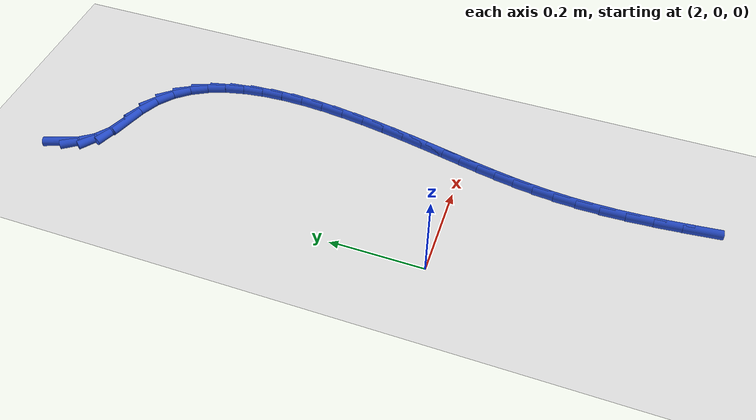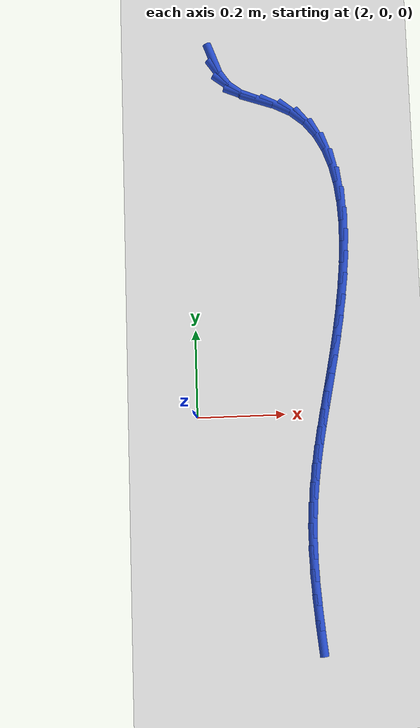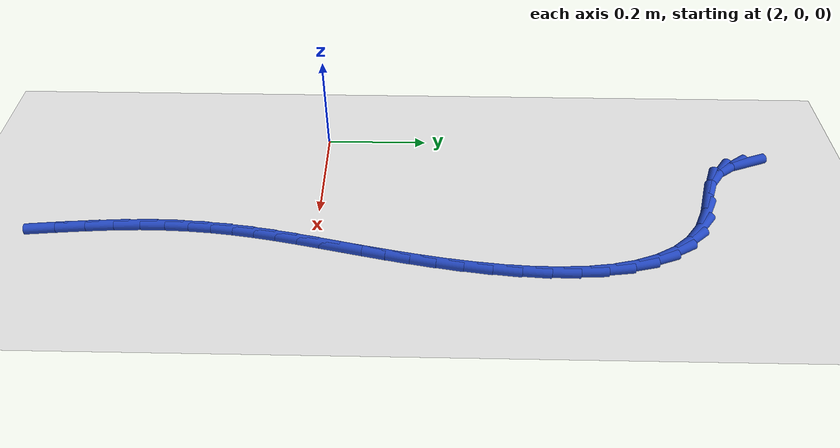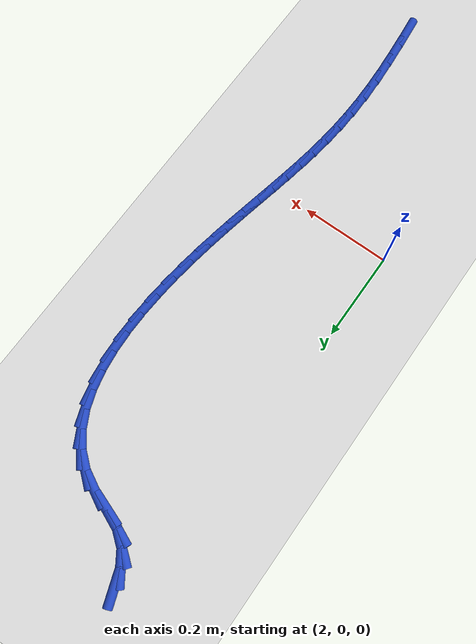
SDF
<sdf version="1.6">
 <world name="default">
  <model name="ground_plane">
   <static>1</static>
   <link name="link">
    <collision name="collision">
     <geometry><plane><normal>0 0 1</normal><size>100 100</size></plane></geometry>
     <surface><friction><ode><mu>100</mu><mu2>50</mu2></ode></friction></surface>
    </collision>
    <visual name="visual">
     <cast_shadows>0</cast_shadows>
     <geometry><plane><normal>0 0 1</normal><size>100 100</size></plane></geometry>
     <material>
      <script><uri>file://media/materials/scripts/gazebo.material</uri><name>Gazebo/WhiteGlow</name></script>
     </material>
    </visual>
   </link>
  </model>
  <model name="line">
   <link name="link_86">
    <pose>2.0585078807323525 0.8496318388529785 0.01 0 1.57 -1.2249898475581995</pose>
    <collision name="collision">
     <geometry><cylinder><radius>0.01</radius><length>0.08</length></cylinder></geometry>
    </collision>
    <visual name="visual">
     <material>
      <script><name>Gazebo/Blue</name><uri>file://media/materials/scripts/gazebo.material</uri></script>
     </material>
     <geometry><cylinder><radius>0.01</radius><length>0.08</length></cylinder></geometry>
    </visual>
   </link>
   <link name="link_87">
    <pose>2.0710477937780403 0.8148261508081717 0.01 0 1.57 -0.9673591083011305</pose>
    <collision name="collision">
     <geometry><cylinder><radius>0.01</radius><length>0.08</length></cylinder></geometry>
    </collision>
    <visual name="visual">
     <material>
      <script><name>Gazebo/Blue</name><uri>file://media/materials/scripts/gazebo.material</uri></script>
     </material>
     <geometry><cylinder><radius>0.01</radius><length>0.08</length></cylinder></geometry>
    </visual>
   </link>
   <link name="link_88">
    <pose>2.09106821237962 0.7857771485557453 0.01 0 1.57 -0.6545795780663911</pose>
    <collision name="collision">
     <geometry><cylinder><radius>0.01</radius><length>0.08</length></cylinder></geometry>
    </collision>
    <visual name="visual">
     <material>
      <script><name>Gazebo/Blue</name><uri>file://media/materials/scripts/gazebo.material</uri></script>
     </material>
     <geometry><cylinder><radius>0.01</radius><length>0.08</length></cylinder></geometry>
    </visual>
   </link>
   <link name="link_89">
    <pose>2.1202967747347072 0.7633455170811826 0.01 0 1.57 -0.3870024964024734</pose>
    <collision name="collision">
     <geometry><cylinder><radius>0.01</radius><length>0.08</length></cylinder></geometry>
    </collision>
    <visual name="visual">
     <material>
      <script><name>Gazebo/Blue</name><uri>file://media/materials/scripts/gazebo.material</uri></script>
     </material>
     <geometry><cylinder><radius>0.01</radius><length>0.08</length></cylinder></geometry>
    </visual>
   </link>
   <link name="link_90">
    <pose>2.1592436663225203 0.7474725074676193 0.01 0 1.57 -0.3262584201818298</pose>
    <collision name="collision">
     <geometry><cylinder><radius>0.01</radius><length>0.08</length></cylinder></geometry>
    </collision>
    <visual name="visual">
     <material>
      <script><name>Gazebo/Blue</name><uri>file://media/materials/scripts/gazebo.material</uri></script>
     </material>
     <geometry><cylinder><radius>0.01</radius><length>0.08</length></cylinder></geometry>
    </visual>
   </link>
   <link name="link_91">
    <pose>2.201775322750322 0.7330819366270795 0.01 0 1.57 -0.46458634883396543</pose>
    <collision name="collision">
     <geometry><cylinder><radius>0.01</radius><length>0.08</length></cylinder></geometry>
    </collision>
    <visual name="visual">
     <material>
      <script><name>Gazebo/Blue</name><uri>file://media/materials/scripts/gazebo.material</uri></script>
     </material>
     <geometry><cylinder><radius>0.01</radius><length>0.08</length></cylinder></geometry>
    </visual>
   </link>
   <link name="link_92">
    <pose>2.240081813916022 0.7138837201366212 0.01 0 1.57 -0.6830885526209128</pose>
    <collision name="collision">
     <geometry><cylinder><radius>0.01</radius><length>0.08</length></cylinder></geometry>
    </collision>
    <visual name="visual">
     <material>
      <script><name>Gazebo/Blue</name><uri>file://media/materials/scripts/gazebo.material</uri></script>
     </material>
     <geometry><cylinder><radius>0.01</radius><length>0.08</length></cylinder></geometry>
    </visual>
   </link>
   <link name="link_93">
    <pose>2.271727751603935 0.6881308116999021 0.01 0 1.57 -0.8922184669051937</pose>
    <collision name="collision">
     <geometry><cylinder><radius>0.01</radius><length>0.08</length></cylinder></geometry>
    </collision>
    <visual name="visual">
     <material>
      <script><name>Gazebo/Blue</name><uri>file://media/materials/scripts/gazebo.material</uri></script>
     </material>
     <geometry><cylinder><radius>0.01</radius><length>0.08</length></cylinder></geometry>
    </visual>
   </link>
   <link name="link_94">
    <pose>2.297196898308863 0.6565435994764391 0.01 0 1.57 -1.0756680846532445</pose>
    <collision name="collision">
     <geometry><cylinder><radius>0.01</radius><length>0.08</length></cylinder></geometry>
    </collision>
    <visual name="visual">
     <material>
      <script><name>Gazebo/Blue</name><uri>file://media/materials/scripts/gazebo.material</uri></script>
     </material>
     <geometry><cylinder><radius>0.01</radius><length>0.08</length></cylinder></geometry>
    </visual>
   </link>
   <link name="link_95">
    <pose>2.3170020276628724 0.6198669935113165 0.01 0 1.57 -1.2276967945687367</pose>
    <collision name="collision">
     <geometry><cylinder><radius>0.01</radius><length>0.08</length></cylinder></geometry>
    </collision>
    <visual name="visual">
     <material>
      <script><name>Gazebo/Blue</name><uri>file://media/materials/scripts/gazebo.material</uri></script>
     </material>
     <geometry><cylinder><radius>0.01</radius><length>0.08</length></cylinder></geometry>
    </visual>
   </link>
   <link name="link_96">
    <pose>2.3316559132980266 0.5788459038496178 0.01 0 1.57 -1.3499988795147575</pose>
    <collision name="collision">
     <geometry><cylinder><radius>0.01</radius><length>0.08</length></cylinder></geometry>
    </collision>
    <visual name="visual">
     <material>
      <script><name>Gazebo/Blue</name><uri>file://media/materials/scripts/gazebo.material</uri></script>
     </material>
     <geometry><cylinder><radius>0.01</radius><length>0.08</length></cylinder></geometry>
    </visual>
   </link>
   <link name="link_97">
    <pose>2.3416713288463886 0.5342252405364257 0.01 0 1.57 -1.4473684288900597</pose>
    <collision name="collision">
     <geometry><cylinder><radius>0.01</radius><length>0.08</length></cylinder></geometry>
    </collision>
    <visual name="visual">
     <material>
      <script><name>Gazebo/Blue</name><uri>file://media/materials/scripts/gazebo.material</uri></script>
     </material>
     <geometry><cylinder><radius>0.01</radius><length>0.08</length></cylinder></geometry>
    </visual>
   </link>
   <link name="link_98">
    <pose>2.3475610479400224 0.48674991361682446 0.01 0 1.57 -1.5249115936790276</pose>
    <collision name="collision">
     <geometry><cylinder><radius>0.01</radius><length>0.08</length></cylinder></geometry>
    </collision>
    <visual name="visual">
     <material>
      <script><name>Gazebo/Blue</name><uri>file://media/materials/scripts/gazebo.material</uri></script>
     </material>
     <geometry><cylinder><radius>0.01</radius><length>0.08</length></cylinder></geometry>
    </visual>
   </link>
   <link name="link_99">
    <pose>2.3498378442109913 0.4371648331358975 0.01 0 1.57 1.5546376911339679</pose>
    <collision name="collision">
     <geometry><cylinder><radius>0.01</radius><length>0.08</length></cylinder></geometry>
    </collision>
    <visual name="visual">
     <material>
      <script><name>Gazebo/Blue</name><uri>file://media/materials/scripts/gazebo.material</uri></script>
     </material>
     <geometry><cylinder><radius>0.01</radius><length>0.08</length></cylinder></geometry>
    </visual>
   </link>
   <link name="link_100">
    <pose>2.349014491291359 0.3862149091387283 0.01 0 1.57 1.5047544848372976</pose>
    <collision name="collision">
     <geometry><cylinder><radius>0.01</radius><length>0.08</length></cylinder></geometry>
    </collision>
    <visual name="visual">
     <material>
      <script><name>Gazebo/Blue</name><uri>file://media/materials/scripts/gazebo.material</uri></script>
     </material>
     <geometry><cylinder><radius>0.01</radius><length>0.08</length></cylinder></geometry>
    </visual>
   </link>
   <link name="link_101">
    <pose>2.3456037628131905 0.33464505167040065 0.01 0 1.57 1.4645722780135277</pose>
    <collision name="collision">
     <geometry><cylinder><radius>0.01</radius><length>0.08</length></cylinder></geometry>
    </collision>
    <visual name="visual">
     <material>
      <script><name>Gazebo/Blue</name><uri>file://media/materials/scripts/gazebo.material</uri></script>
     </material>
     <geometry><cylinder><radius>0.01</radius><length>0.08</length></cylinder></geometry>
    </visual>
   </link>
   <link name="link_102">
    <pose>2.3401184324085484 0.283200170775998 0.01 0 1.57 1.4323470001797607</pose>
    <collision name="collision">
     <geometry><cylinder><radius>0.01</radius><length>0.08</length></cylinder></geometry>
    </collision>
    <visual name="visual">
     <material>
      <script><name>Gazebo/Blue</name><uri>file://media/materials/scripts/gazebo.material</uri></script>
     </material>
     <geometry><cylinder><radius>0.01</radius><length>0.08</length></cylinder></geometry>
    </visual>
   </link>
   <link name="link_103">
    <pose>2.3330712737094954 0.23262517650060388 0.01 0 1.57 1.406916186241533</pose>
    <collision name="collision">
     <geometry><cylinder><radius>0.01</radius><length>0.08</length></cylinder></geometry>
    </collision>
    <visual name="visual">
     <material>
      <script><name>Gazebo/Blue</name><uri>file://media/materials/scripts/gazebo.material</uri></script>
     </material>
     <geometry><cylinder><radius>0.01</radius><length>0.08</length></cylinder></geometry>
    </visual>
   </link>
   <link name="link_104">
    <pose>2.3249750603480965 0.18366497888930194 0.01 0 1.57 1.3875560495807224</pose>
    <collision name="collision">
     <geometry><cylinder><radius>0.01</radius><length>0.08</length></cylinder></geometry>
    </collision>
    <visual name="visual">
     <material>
      <script><name>Gazebo/Blue</name><uri>file://media/materials/scripts/gazebo.material</uri></script>
     </material>
     <geometry><cylinder><radius>0.01</radius><length>0.08</length></cylinder></geometry>
    </visual>
   </link>
   <link name="link_105">
    <pose>2.316328544336196 0.13700752926711304 0.01 0 1.57 1.3734585838072135</pose>
    <collision name="collision">
     <geometry><cylinder><radius>0.01</radius><length>0.08</length></cylinder></geometry>
    </collision>
    <visual name="visual">
     <material>
      <script><name>Gazebo/Blue</name><uri>file://media/materials/scripts/gazebo.material</uri></script>
     </material>
     <geometry><cylinder><radius>0.01</radius><length>0.08</length></cylinder></geometry>
    </visual>
   </link>
   <link name="link_106">
    <pose>2.307456583787551 0.09263438599540294 0.01 0 1.57 1.3649897628562466</pose>
    <collision name="collision">
     <geometry><cylinder><radius>0.01</radius><length>0.08</length></cylinder></geometry>
    </collision>
    <visual name="visual">
     <material>
      <script><name>Gazebo/Blue</name><uri>file://media/materials/scripts/gazebo.material</uri></script>
     </material>
     <geometry><cylinder><radius>0.01</radius><length>0.08</length></cylinder></geometry>
    </visual>
   </link>
   <link name="link_107">
    <pose>2.2985664485890385 0.050049439748573704 0.01 0 1.57 1.3631116732076547</pose>
    <collision name="collision">
     <geometry><cylinder><radius>0.01</radius><length>0.08</length></cylinder></geometry>
    </collision>
    <visual name="visual">
     <material>
      <script><name>Gazebo/Blue</name><uri>file://media/materials/scripts/gazebo.material</uri></script>
     </material>
     <geometry><cylinder><radius>0.01</radius><length>0.08</length></cylinder></geometry>
    </visual>
   </link>
   <link name="link_108">
    <pose>2.2898631913520653 0.00874757416968108 0.01 0 1.57 1.3685047364045335</pose>
    <collision name="collision">
     <geometry><cylinder><radius>0.01</radius><length>0.08</length></cylinder></geometry>
    </collision>
    <visual name="visual">
     <material>
      <script><name>Gazebo/Blue</name><uri>file://media/materials/scripts/gazebo.material</uri></script>
     </material>
     <geometry><cylinder><radius>0.01</radius><length>0.08</length></cylinder></geometry>
    </visual>
   </link>
   <link name="link_109">
    <pose>2.281551864688037 -0.03177632709821929 0.01 0 1.57 1.3814368625527615</pose>
    <collision name="collision">
     <geometry><cylinder><radius>0.01</radius><length>0.08</length></cylinder></geometry>
    </collision>
    <visual name="visual">
     <material>
      <script><name>Gazebo/Blue</name><uri>file://media/materials/scripts/gazebo.material</uri></script>
     </material>
     <geometry><cylinder><radius>0.01</radius><length>0.08</length></cylinder></geometry>
    </visual>
   </link>
   <link name="link_110">
    <pose>2.2738375212083612 -0.07202738041207159 0.01 0 1.57 1.401682594650171</pose>
    <collision name="collision">
     <geometry><cylinder><radius>0.01</radius><length>0.08</length></cylinder></geometry>
    </collision>
    <visual name="visual">
     <material>
      <script><name>Gazebo/Blue</name><uri>file://media/materials/scripts/gazebo.material</uri></script>
     </material>
     <geometry><cylinder><radius>0.01</radius><length>0.08</length></cylinder></geometry>
    </visual>
   </link>
   <link name="link_111">
    <pose>2.2669252135244435 -0.11251070212882018 0.01 0 1.57 1.4285059001752896</pose>
    <collision name="collision">
     <geometry><cylinder><radius>0.01</radius><length>0.08</length></cylinder></geometry>
    </collision>
    <visual name="visual">
     <material>
      <script><name>Gazebo/Blue</name><uri>file://media/materials/scripts/gazebo.material</uri></script>
     </material>
     <geometry><cylinder><radius>0.01</radius><length>0.08</length></cylinder></geometry>
    </visual>
   </link>
   <link name="link_112">
    <pose>2.2610199942476914 -0.15373140860540932 0.01 0 1.57 1.4607220092799844</pose>
    <collision name="collision">
     <geometry><cylinder><radius>0.01</radius><length>0.08</length></cylinder></geometry>
    </collision>
    <visual name="visual">
     <material>
      <script><name>Gazebo/Blue</name><uri>file://media/materials/scripts/gazebo.material</uri></script>
     </material>
     <geometry><cylinder><radius>0.01</radius><length>0.08</length></cylinder></geometry>
    </visual>
   </link>
   <link name="link_113">
    <pose>2.256326915989509 -0.19619461619878328 0.01 0 1.57 1.4968345980622761</pose>
    <collision name="collision">
     <geometry><cylinder><radius>0.01</radius><length>0.08</length></cylinder></geometry>
    </collision>
    <visual name="visual">
     <material>
      <script><name>Gazebo/Blue</name><uri>file://media/materials/scripts/gazebo.material</uri></script>
     </material>
     <geometry><cylinder><radius>0.01</radius><length>0.08</length></cylinder></geometry>
    </visual>
   </link>
   <link name="link_114">
    <pose>2.2530510313613057 -0.2404054412658863 0.01 0 1.57 1.5352213350539328</pose>
    <collision name="collision">
     <geometry><cylinder><radius>0.01</radius><length>0.08</length></cylinder></geometry>
    </collision>
    <visual name="visual">
     <material>
      <script><name>Gazebo/Blue</name><uri>file://media/materials/scripts/gazebo.material</uri></script>
     </material>
     <geometry><cylinder><radius>0.01</radius><length>0.08</length></cylinder></geometry>
    </visual>
   </link>
   <link name="link_115">
    <pose>2.2513973929744857 -0.2868690001636627 0.01 0 1.57 -1.5672681924192742</pose>
    <collision name="collision">
     <geometry><cylinder><radius>0.01</radius><length>0.08</length></cylinder></geometry>
    </collision>
    <visual name="visual">
     <material>
      <script><name>Gazebo/Blue</name><uri>file://media/materials/scripts/gazebo.material</uri></script>
     </material>
     <geometry><cylinder><radius>0.01</radius><length>0.08</length></cylinder></geometry>
    </visual>
   </link>
   <link name="link_116">
    <pose>2.2515710534404567 -0.33609040924905564 0.01 0 1.57 -1.5297764076033626</pose>
    <collision name="collision">
     <geometry><cylinder><radius>0.01</radius><length>0.08</length></cylinder></geometry>
    </collision>
    <visual name="visual">
     <material>
      <script><name>Gazebo/Blue</name><uri>file://media/materials/scripts/gazebo.material</uri></script>
     </material>
     <geometry><cylinder><radius>0.01</radius><length>0.08</length></cylinder></geometry>
    </visual>
   </link>
   <link name="link_117">
    <pose>2.2537205909326787 -0.3884632995709991 0.01 0 1.57 -1.5012648693094521</pose>
    <collision name="collision">
     <geometry><cylinder><radius>0.01</radius><length>0.08</length></cylinder></geometry>
    </collision>
    <visual name="visual">
     <material>
      <script><name>Gazebo/Blue</name><uri>file://media/materials/scripts/gazebo.material</uri></script>
     </material>
     <geometry><cylinder><radius>0.01</radius><length>0.08</length></cylinder></geometry>
    </visual>
   </link>
   <link name="link_118">
    <pose>2.2575544133049283 -0.443512368808696 0.01 0 1.57 -1.482711085760736</pose>
    <collision name="collision">
     <geometry><cylinder><radius>0.01</radius><length>0.08</length></cylinder></geometry>
    </collision>
    <visual name="visual">
     <material>
      <script><name>Gazebo/Blue</name><uri>file://media/materials/scripts/gazebo.material</uri></script>
     </material>
     <geometry><cylinder><radius>0.01</radius><length>0.08</length></cylinder></geometry>
    </visual>
   </link>
   <link name="link_119">
    <pose>2.262574358626632 -0.5003545284486608 0.01 0 1.57 -1.472298197107817</pose>
    <collision name="collision">
     <geometry><cylinder><radius>0.01</radius><length>0.08</length></cylinder></geometry>
    </collision>
    <visual name="visual">
     <material>
      <script><name>Gazebo/Blue</name><uri>file://media/materials/scripts/gazebo.material</uri></script>
     </material>
     <geometry><cylinder><radius>0.01</radius><length>0.08</length></cylinder></geometry>
    </visual>
   </link>
  </model>
 </world>
</sdf>
